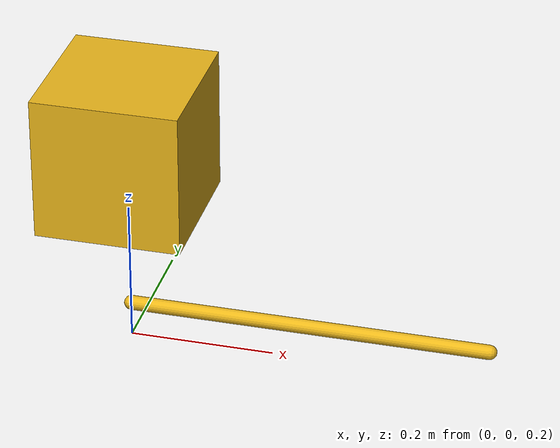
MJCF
<mujoco model="servo">
  <compiler angle="radian" coordinate="global" inertiafromgeom="true"/>
  <default>
    <geom rgba=".9 .7 .1 1" size="0.01"/>
    <joint axis="0 1 0" damping=".5" limited="true"  type="hinge"/>
  </default>

  <worldbody>
    <body>
      <geom density="1" pos="0 0 0.5" size=".1 .1 .1" type="box"/>
      <body>
        <geom fromto="0 0 .25 .5 0 .25" type="capsule"/>
        <joint name="servo_1" pos="0 0 .1" range="0 6.283185308"/>
      </body>
    </body>
  </worldbody>

  <actuator>
    <position ctrllimited="false" ctrlrange="0 6.283185308" gear="1" joint="servo_1"/>
  </actuator>
</mujoco>
